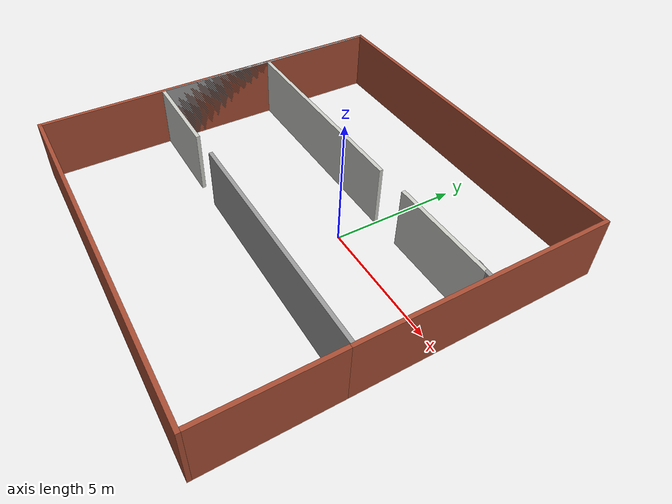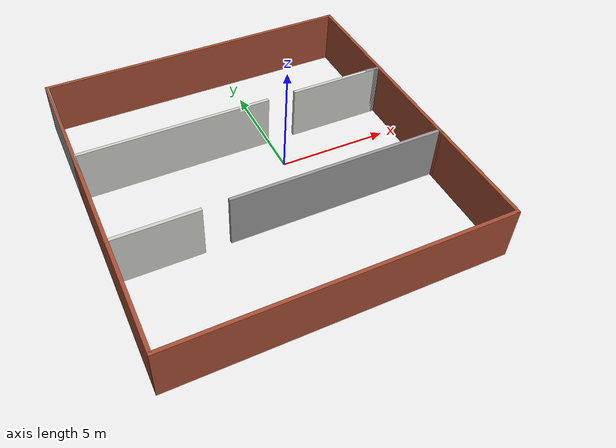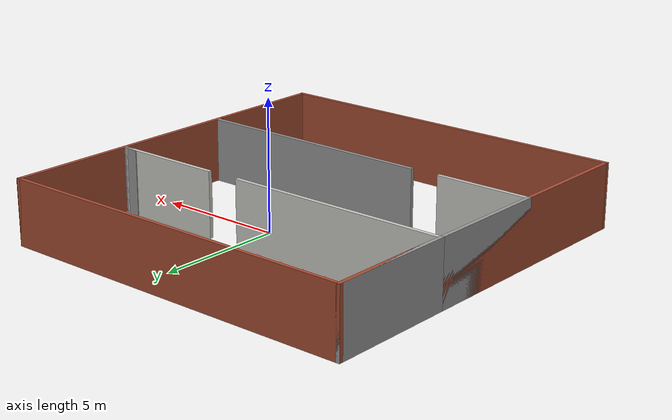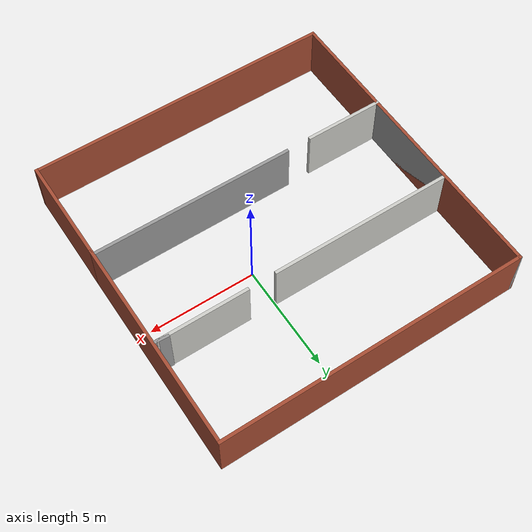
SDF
<?xml version='1.0'?>
<sdf version='1.7'>
  <model name='Untitled'>
    <pose>-1.5451 -0.815968 0 0 -0 0</pose>
    <link name='Wall_10'>
      <collision name='Wall_10_Collision'>
        <geometry>
          <box>
            <size>14.75 0.15 2.5</size>
          </box>
        </geometry>
        <pose>0 0 1.25 0 -0 0</pose>
      </collision>
      <visual name='Wall_10_Visual'>
        <pose>0 0 1.25 0 -0 0</pose>
        <geometry>
          <box>
            <size>14.75 0.15 2.5</size>
          </box>
        </geometry>
        <material>
          <script>
            <uri>file://media/materials/scripts/gazebo.material</uri>
            <name>Gazebo/Bricks</name>
          </script>
          <ambient>1 1 1 1</ambient>
        </material>
        <meta>
          <layer>0</layer>
        </meta>
      </visual>
      <pose>-7.175 0.049999 0 0 -0 -1.5708</pose>
    </link>
    <link name='Wall_14'>
      <collision name='Wall_14_Collision'>
        <geometry>
          <box>
            <size>14.5003 0.15 2.5</size>
          </box>
        </geometry>
        <pose>0 0 1.25 0 -0 0</pose>
      </collision>
      <visual name='Wall_14_Visual'>
        <pose>0 0 1.25 0 -0 0</pose>
        <geometry>
          <box>
            <size>14.5003 0.15 2.5</size>
          </box>
        </geometry>
        <material>
          <script>
            <uri>file://media/materials/scripts/gazebo.material</uri>
            <name>Gazebo/Bricks</name>
          </script>
          <ambient>1 1 1 1</ambient>
        </material>
        <meta>
          <layer>0</layer>
        </meta>
      </visual>
      <pose>0 -7.35 0 0 -0 3.14159</pose>
    </link>
    <link name='Wall_16'>
      <collision name='Wall_16_Collision'>
        <geometry>
          <box>
            <size>5 0.15 2.5</size>
          </box>
        </geometry>
        <pose>0 0 1.25 0 -0 0</pose>
      </collision>
      <visual name='Wall_16_Visual'>
        <pose>0 0 1.25 0 -0 0</pose>
        <geometry>
          <box>
            <size>5 0.15 2.5</size>
          </box>
        </geometry>
        <material>
          <script>
            <uri>file://media/materials/scripts/gazebo.material</uri>
            <name>Gazebo/Grey</name>
          </script>
          <ambient>1 1 1 1</ambient>
        </material>
        <meta>
          <layer>0</layer>
        </meta>
      </visual>
      <pose>-7.175 4.925 0 0 -0 -1.5708</pose>
    </link>
    <link name='Wall_17'>
      <collision name='Wall_17_Collision'>
        <geometry>
          <box>
            <size>8.75 0.15 2.5</size>
          </box>
        </geometry>
        <pose>0 0 1.25 0 -0 0</pose>
      </collision>
      <visual name='Wall_17_Visual'>
        <pose>0 0 1.25 0 -0 0</pose>
        <geometry>
          <box>
            <size>8.75 0.15 2.5</size>
          </box>
        </geometry>
        <material>
          <script>
            <uri>file://media/materials/scripts/gazebo.material</uri>
            <name>Gazebo/CeilingTiled</name>
          </script>
          <ambient>1 1 1 1</ambient>
        </material>
        <meta>
          <layer>0</layer>
        </meta>
      </visual>
      <pose>-2.875 2.5 0 0 -0 0</pose>
    </link>
    <link name='Wall_19'>
      <collision name='Wall_19_Collision'>
        <geometry>
          <box>
            <size>4.25 0.15 2.5</size>
          </box>
        </geometry>
        <pose>0 0 1.25 0 -0 0</pose>
      </collision>
      <visual name='Wall_19_Visual'>
        <pose>0 0 1.25 0 -0 0</pose>
        <geometry>
          <box>
            <size>4.25 0.15 2.5</size>
          </box>
        </geometry>
        <material>
          <script>
            <uri>file://media/materials/scripts/gazebo.material</uri>
            <name>Gazebo/CeilingTiled</name>
          </script>
          <ambient>1 1 1 1</ambient>
        </material>
        <meta>
          <layer>0</layer>
        </meta>
      </visual>
      <pose>4.89517 2.5146 0 0 -0 0</pose>
    </link>
    <link name='Wall_21'>
      <collision name='Wall_21_Collision'>
        <geometry>
          <box>
            <size>0.55345 0.15 2.5</size>
          </box>
        </geometry>
        <pose>0 0 1.25 0 -0 0</pose>
      </collision>
      <visual name='Wall_21_Visual'>
        <pose>0 0 1.25 0 -0 0</pose>
        <geometry>
          <box>
            <size>0.55345 0.15 2.5</size>
          </box>
        </geometry>
        <material>
          <script>
            <uri>file://media/materials/scripts/gazebo.material</uri>
            <name>Gazebo/Grey</name>
          </script>
          <ambient>1 1 1 1</ambient>
        </material>
        <meta>
          <layer>0</layer>
        </meta>
      </visual>
      <pose>6.74389 2.52791 0 0 -0 -0.06598</pose>
    </link>
    <link name='Wall_23'>
      <collision name='Wall_23_Collision'>
        <geometry>
          <box>
            <size>0.25 0.15 2.5</size>
          </box>
        </geometry>
        <pose>0 0 1.25 0 -0 0</pose>
      </collision>
      <visual name='Wall_23_Visual'>
        <pose>0 0 1.25 0 -0 0</pose>
        <geometry>
          <box>
            <size>0.25 0.15 2.5</size>
          </box>
        </geometry>
        <material>
          <script>
            <uri>file://media/materials/scripts/gazebo.material</uri>
            <name>Gazebo/Grey</name>
          </script>
          <ambient>1 1 1 1</ambient>
        </material>
        <meta>
          <layer>0</layer>
        </meta>
      </visual>
      <pose>6.99517 2.5146 0 0 -0 0</pose>
    </link>
    <link name='Wall_27'>
      <collision name='Wall_27_Collision'>
        <geometry>
          <box>
            <size>5 0.15 2.5</size>
          </box>
        </geometry>
        <pose>0 0 1.25 0 -0 0</pose>
      </collision>
      <visual name='Wall_27_Visual'>
        <pose>0 0 1.25 0 -0 0</pose>
        <geometry>
          <box>
            <size>5 0.15 2.5</size>
          </box>
        </geometry>
        <material>
          <script>
            <uri>file://media/materials/scripts/gazebo.material</uri>
            <name>Gazebo/Grey</name>
          </script>
          <ambient>1 1 1 1</ambient>
        </material>
        <meta>
          <layer>0</layer>
        </meta>
      </visual>
      <pose>-7.175 0.075 0 0 -0 -1.5708</pose>
    </link>
    <link name='Wall_28'>
      <collision name='Wall_28_Collision'>
        <geometry>
          <box>
            <size>3.75 0.15 2.5</size>
          </box>
        </geometry>
        <pose>0 0 1.25 0 -0 0</pose>
      </collision>
      <visual name='Wall_28_Visual'>
        <pose>0 0 1.25 0 -0 0</pose>
        <geometry>
          <box>
            <size>3.75 0.15 2.5</size>
          </box>
        </geometry>
        <material>
          <script>
            <uri>file://media/materials/scripts/gazebo.material</uri>
            <name>Gazebo/CeilingTiled</name>
          </script>
          <ambient>1 1 1 1</ambient>
        </material>
        <meta>
          <layer>0</layer>
        </meta>
      </visual>
      <pose>-5.375 -2.35 0 0 -0 0</pose>
    </link>
    <link name='Wall_30'>
      <collision name='Wall_30_Collision'>
        <geometry>
          <box>
            <size>9.5 0.15 2.5</size>
          </box>
        </geometry>
        <pose>0 0 1.25 0 -0 0</pose>
      </collision>
      <visual name='Wall_30_Visual'>
        <pose>0 0 1.25 0 -0 0</pose>
        <geometry>
          <box>
            <size>9.5 0.15 2.5</size>
          </box>
        </geometry>
        <material>
          <script>
            <uri>file://media/materials/scripts/gazebo.material</uri>
            <name>Gazebo/Grey</name>
          </script>
          <ambient>1 1 1 1</ambient>
        </material>
        <meta>
          <layer>0</layer>
        </meta>
      </visual>
      <pose>2.35974 -2.32663 0 0 -0 0</pose>
    </link>
    <link name='Wall_4'>
      <collision name='Wall_4_Collision'>
        <geometry>
          <box>
            <size>14.5 0.15 2.5</size>
          </box>
        </geometry>
        <pose>0 0 1.25 0 -0 0</pose>
      </collision>
      <visual name='Wall_4_Visual'>
        <pose>0 0 1.25 0 -0 0</pose>
        <geometry>
          <box>
            <size>14.5 0.15 2.5</size>
          </box>
        </geometry>
        <material>
          <script>
            <uri>file://media/materials/scripts/gazebo.material</uri>
            <name>Gazebo/Bricks</name>
          </script>
          <ambient>1 1 1 1</ambient>
        </material>
        <meta>
          <layer>0</layer>
        </meta>
      </visual>
      <pose>0 7.35 0 0 -0 0</pose>
    </link>
    <link name='Wall_5'>
      <collision name='Wall_5_Collision'>
        <geometry>
          <box>
            <size>10 0.15 2.5</size>
          </box>
        </geometry>
        <pose>0 0 1.25 0 -0 0</pose>
      </collision>
      <visual name='Wall_5_Visual'>
        <pose>0 0 1.25 0 -0 0</pose>
        <geometry>
          <box>
            <size>10 0.15 2.5</size>
          </box>
        </geometry>
        <material>
          <script>
            <uri>file://media/materials/scripts/gazebo.material</uri>
            <name>Gazebo/Bricks</name>
          </script>
          <ambient>1 1 1 1</ambient>
        </material>
        <meta>
          <layer>0</layer>
        </meta>
      </visual>
      <pose>7.175 2.425 0 0 -0 -1.5708</pose>
    </link>
    <link name='Wall_7'>
      <collision name='Wall_7_Collision'>
        <geometry>
          <box>
            <size>5 0.15 2.5</size>
          </box>
        </geometry>
        <pose>0 0 1.25 0 -0 0</pose>
      </collision>
      <visual name='Wall_7_Visual'>
        <pose>0 0 1.25 0 -0 0</pose>
        <geometry>
          <box>
            <size>5 0.15 2.5</size>
          </box>
        </geometry>
        <material>
          <script>
            <uri>file://media/materials/scripts/gazebo.material</uri>
            <name>Gazebo/Bricks</name>
          </script>
          <ambient>1 1 1 1</ambient>
        </material>
        <meta>
          <layer>0</layer>
        </meta>
      </visual>
      <pose>7.175 -4.925 0 0 -0 -1.5708</pose>
    </link>
    <static>1</static>
  </model>
</sdf>
